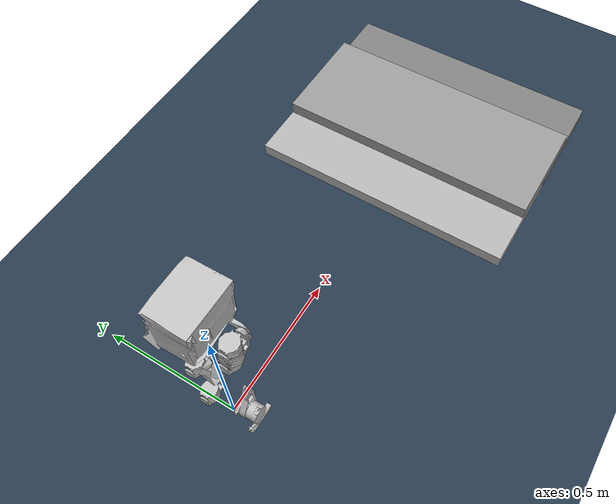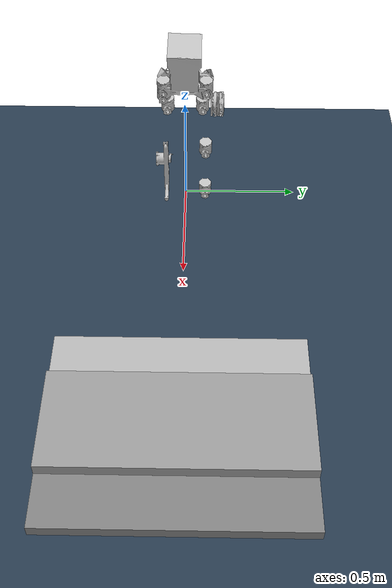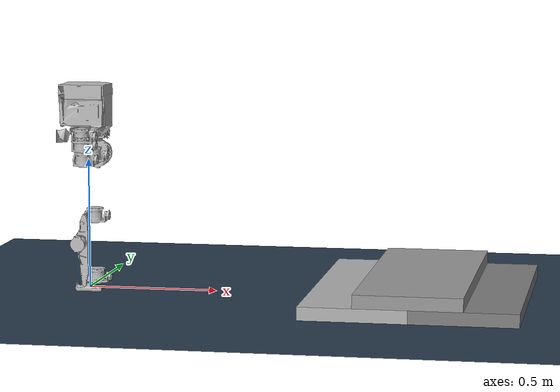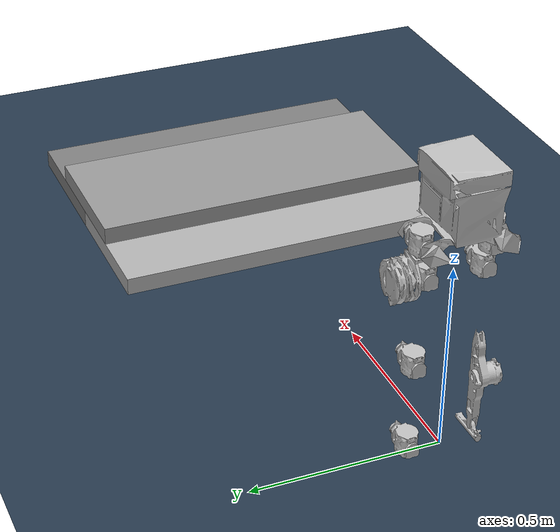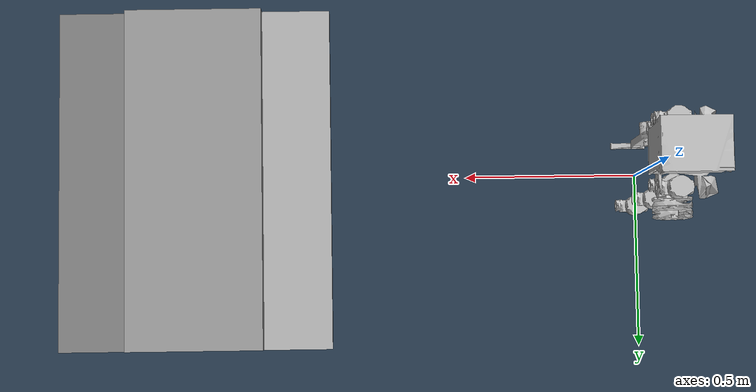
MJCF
<mujoco model="hunter rough scene">
  <include file="maker_pdd_mjx.xml"/>

  <statistic center="0 0 0.1" extent="0.8" meansize="0.04"/>

  <visual>
    <headlight diffuse=".8 .8 .8" ambient=".2 .2 .2" specular="1 1 1"/>
    <rgba force="1 0 0 1"/>
    <global azimuth="120" elevation="-20"/>
    <map force="0.01"/>
    <scale forcewidth="0.3" contactwidth="0.5" contactheight="0.2"/>
    <quality shadowsize="8192"/>
  </visual>

  <asset>
    <!-- https://polyhaven.com/a/rock_face -->
    <texture type="2d" name="groundplane" file="./assets/rocky_texture.png"/>
    <material name="groundplane" texture="groundplane" texuniform="true" texrepeat="5 5" reflectance=".8"/>
    <hfield name="hfield" file="./assets/hfield.png" size="10 10 .05 0.1"/>
  </asset>

  <worldbody>
    <light pos="0 0 1"/>
    <camera name="front_view" pos="0 -5 1" xyaxes="1 0 0 0 0 1"/>

    <!-- Ground plane for context -->
    <body name="stairs" pos="1.0 0.0 0.0" quat="1 0 0 -1">
      <!-- Ground plane for context -->

      <!-- Step 1 -->
      <geom name= "stairs_1" type="box" size="0.5 0.2 0.025" pos="0 0.1 0.025" rgba="0.7 0.7 0.7 1"/>
      <!-- Step 2 -->
      <geom name= "stairs_2" type="box" size="0.5 0.2 0.025" pos="0 0.3 0.075" rgba="0.6 0.6 0.6 1"/>
      <!-- Step 3 -->
      <geom name= "stairs_3" type="box" size="0.5 0.2 0.025" pos="0 0.5 0.025" rgba="0.5 0.5 0.5 1"/>

      <!-- Step 1 -->
      <!-- Step 2 -->
      <!-- Step 3 -->
      <!-- Step 4 -->
      <!-- Step 5 -->
      <!-- Step 6 -->
      <!-- Step 7 -->
    </body>

  </worldbody>
</mujoco>

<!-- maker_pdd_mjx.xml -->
<mujoco model="pdd_mjx">
  <compiler angle="radian" meshdir="meshes/"/>
  <option iterations="2" ls_iterations="5" timestep="0.001">
    <flag eulerdamp="disable"/>
  </option>

  <size njmax="500" nconmax="100" />

  <visual>
    <quality shadowsize='4096' />
    <map znear='0.05' />
  </visual>

  <default>
    <default class="hunter">
      <position inheritrange="1" dampratio="0"/>
      <joint damping="0.00" frictionloss="0.2" armature="0.1"/>
      <default class="visual">
        <geom type="mesh" contype="0" conaffinity="0" group="1" density="0" rgba="0.75294 0.75294 0.75294 1"/>
      </default>
      <default class='visualgeom'>
        <geom material='visualgeom' condim='1' contype='0' conaffinity='0' />
      </default>
      <default class="collision">
        <geom group="3" mass="0" density="0"/>
        <default class="foot">
          <geom size="0.05005 0.01725 0.001" type="box"/>
          <default class="foot1">
            <geom size="0.001" contype="0" conaffinity="0" density="0"/>
          </default>
          <default class="foot2">
            <geom size="0.001"/>
          </default>
        </default>
      </default>
      <site size="0.001" rgba="0.5 0.5 0.5 0.3" group="4"/>
    </default>
    <default class="hunter_motor_1">
      <joint damping="1.0" armature="0.1" actuatorfrcrange="-36 36"/>
    </default>
    <default class="hunter_motor_2">
      <joint damping="0.5" armature="0.1" actuatorfrcrange="-36 36"/>
    </default>
    <default class="hunter_motor_3">
      <joint damping="1.0" armature="0.1" actuatorfrcrange="-94 94"/>
    </default>
    <default class="hunter_motor_4">
      <joint damping="2.5" armature="0.1" actuatorfrcrange="-94 94"/>
    </default>
     <default class="hunter_motor_5">
      <joint damping="1.0" armature="0.1" actuatorfrcrange="-36 36"/>
    </default>

  </default>

  <asset>
    <texture type="skybox" builtin="gradient" rgb1="0.3 0.5 0.7" rgb2="0 0 0" width="512"
      height="512" />
    <texture name="texplane" type="2d" builtin="checker" rgb1=".2 .3 .4" rgb2=".1 0.15 0.2"
      width="512" height="512" mark="cross" markrgb=".8 .8 .8" />
    <texture name="texplane2" type="2d" builtin="checker" rgb1="1 0.3137 0.1843"
      rgb2="0.0 0.30196 0.38039"
      width="512" height="512" mark="cross" markrgb=".8 .8 .8" />

    <material name="matplane" reflectance="0." texture="texplane" texrepeat="1 1" texuniform="true" />
    <material name="matplane2" reflectance="0.1" texture="texplane2" texrepeat="1 1"
      texuniform="true" />

    <material name='obstacle' rgba='0.9 0.6 0.2 1' />
    <material name='visualgeom' rgba='0.5 0.9 0.2 1' />
    <material name='visualgeom2' rgba='0.5 0.9 0.2 1' />

    <mesh name="base_link" file="base_link.STL" />
    <mesh name="leg_l1_link" file="leg_l1_link.STL" />
    <mesh name="leg_l2_link" file="leg_l2_link.STL" />
    <mesh name="leg_l3_link" file="leg_l3_link.STL" />
    <mesh name="leg_l4_link" file="leg_l4_link.STL" />
    <mesh name="leg_l5_link" file="leg_l5_link.STL" />
    <mesh name="leg_r1_link" file="leg_r1_link.STL" />
    <mesh name="leg_r2_link" file="leg_r2_link.STL" />
    <mesh name="leg_r3_link" file="leg_r3_link.STL" />
    <mesh name="leg_r4_link" file="leg_r4_link.STL" />
    <mesh name="leg_r5_link" file="leg_r5_link.STL" />

    <hfield name='hf0' nrow='200' ncol='200' size="10 5 0.2 .1" />
  </asset>
  <worldbody>
    <light directional="true" diffuse=".4 .4 .4" specular="0.1 0.1 0.1" pos="0 0 5.0" dir="0 0 -1"
      castshadow="false" />
    <light directional="true" diffuse=".6 .6 .6" specular="0.2 0.2 0.2" pos="0 0 4" dir="0 0 -1" />
    <geom name="ground" type="plane" size="0 0 1" pos="0.001 0 0" quat="1 0 0 0" material="matplane"
      condim="1" conaffinity='15' />

    <body name="base_link" pos="0 0 0.7" childclass="hunter">
      <inertial pos="-0.010856 -6.8e-05 -0.007128" quat="0.979606 0.00882716 0.200723 -0.00231074" mass="5.67363"
      	diaginertia="0.0355096 0.0296524 0.0283549"/>
      <joint type='slide' axis='1 0 0' limited='false' />
      <joint type='slide' axis='0 1 0' limited='false' />
      <joint type='slide' axis='0 0 1' limited='false' />
      <joint type='ball' limited='false' />
      <camera name="track" pos="1.248 -0.947 0.3" xyaxes="0.628 0.779 -0.000 -0.274 0.221 0.936" mode="trackcom"/>

      <geom class="visual" mesh="base_link"/>
      <geom class="collision" size="0.092 0.075 0.1" pos="-0.01 0 -0.006" type="box"/>
      <site name="imu" size='0.01' pos="0 0 0"/>

      <body name="leg_l1_link" pos="-0.002 0.09 -0.1035">
        <inertial pos="0.002501 5.3e-05 -0.002722" quat="0.472677 0.527005 0.495251 0.503556" mass="0.453728"
          diaginertia="0.000163063 0.000147076 8.18618e-05"/>
        <joint name="leg_l1_joint" pos="0 0 0" axis="1 0 0" limited="true" range="-0.2 0.5" frictionloss="0.2"/>
        <geom class="visual" mesh="leg_l1_link"/>
        <body name="leg_l2_link" pos="0 -0.00016972 -0.0325">
          <inertial pos="-0.000273 0.043826 -0.058639" quat="0.7074 0.0648812 -0.0612384 0.70116" mass="0.925998"
            diaginertia="0.00166463 0.00123897 0.0010754"/>
          <joint name="leg_l2_joint" pos="0 0 0" axis="0 0 1" limited="true" range="-0.5 1" frictionloss="0.2"/>
          <geom class="visual" mesh="leg_l2_link"/>
          <geom class="collision" size="0.065 0.073 0.073" pos="0 0.0046 -0.057" quat="0.707388 0.706825 0 0" type="box" />
          <body name="leg_l3_link" pos="0 -0.01433 -0.0575">
            <inertial pos="0.003163 -0.022552 -0.027258" quat="0.678041 0.0230005 -0.0875592 0.729428" mass="1.39047" diaginertia="0.00722081 0.00694653 0.00181065"/>
            <joint name="leg_l3_joint" pos="0 0 0" axis="0 1 0" limited="true" range="-1.5 0.2" frictionloss="0.2"/>
            <geom class="visual" mesh="leg_l3_link"/>
            <geom class="collision" size="0.03 0.125 0.025" pos="0.015 0.02 -0.1" quat="0.707388 0.706825 0 0" type="box"/>
            <body name="leg_l4_link" pos="0 0.0145 -0.24">
              <inertial pos="-0.012044 0.006361 -0.093905" quat="0.696191 0.0388817 0.0714045 0.713237" mass="0.649518" diaginertia="0.00246473 0.00221871 0.000430556"/>
              <joint name="leg_l4_joint" pos="0 0 0" axis="0 1 0" limited="true" range="0 1.0" frictionloss="0.2"/>
              <geom class="visual" mesh="leg_l4_link"/>
              <geom class="collision" size="0.0205 0.125 0.015" pos="0 0 -0.105" quat="0.707388 0.706825 0 0" type="box"/>
              <geom class="collision" size="0.034 0.035 0.035" pos="-0.011 0.012 -0.079" quat="0.707388 0.706825 0 0" type="box" />
              <body name="leg_l5_link" pos="0.005 0 -0.23995">
                <inertial pos="0.012435 0 -0.015511" quat="0.48854 0.511203 0.511203 0.48854" mass="0.030265" diaginertia="2.5e-05 2.40454e-05 1.95464e-06"/>
                <joint name="leg_l5_joint" pos="0 0 0" axis="0 1 0" limited="true" range="-0.52 0.52" frictionloss="0.2"/>
                <geom class="visual" mesh="leg_l5_link"/>
                <geom class="collision" size="0.05005 0.01725 0.00875" pos="0.01503 0 -0.0102" quat="0.707388 0.706825 0 0" type="box" />
                <body name="leg_l_f1_link" pos="0.06 0 -0.007">
                  <inertial pos="0 0 0" mass="0.01" diaginertia="1e-06 1e-06 1e-06"/>
                  <geom name="leg_l_f1_foot1" class="foot1"/>
                  <geom name="leg_l_f1_foot2" class="foot2"/>
                  <site name="leg_l_f1_site" pos="0 0 0"/>
                </body>
                <body name="leg_l_f2_link" pos="-0.03 0 -0.007">
                  <inertial pos="0 0 0" mass="0.01" diaginertia="1e-06 1e-06 1e-06"/>
                  <geom name="leg_l_f2_foot1" class="foot1"/>
                  <geom name="leg_l_f2_foot2" class="foot2"/>
                  <site name="leg_l_f2_site" pos="0 0 0"/>
                </body>
                <geom name="left_foot" class="foot"/>
                <site name="left_foot" pos="0 0 0" />
              </body>
            </body>
          </body>
        </body>
      </body>
      <body name="leg_r1_link" pos="-0.002 -0.09 -0.1035">
        <inertial pos="0.002501 -5.3e-05 -0.002722" quat="0.503556 0.495251 0.527005 0.472677" mass="0.453728" diaginertia="0.000163063 0.000147076 8.18618e-05"/>
        <joint name="leg_r1_joint" pos="0 0 0" axis="1 0 0" limited="true" range="-0.5 0.2" frictionloss="0.2"/>
        <geom class="visual" mesh="leg_r1_link"/>
        <body name="leg_r2_link" pos="0 0.00016972 -0.0325">
          <inertial pos="9e-05 -0.043826 -0.058639" quat="0.7074 0.0648812 -0.0612384 0.70116" mass="0.925998" diaginertia="0.00166463 0.00123897 0.0010754"/>
          <joint name="leg_r2_joint" pos="0 0 0" axis="0 0 1" limited="true" range="-1 0.5" frictionloss="0.2"/>
          <geom class="visual" mesh="leg_r2_link"/>
          <geom class="collision" size="0.065 0.073 0.073" pos="0 -0.0033 -0.057" quat="0.707388 0.706825 0 0" type="box"/>
          <body name="leg_r3_link" pos="0 0.01633 -0.0575">
            <inertial pos="0.003311 0.02265 -0.027271" quat="0.734236 -0.0877978 0.023126 0.672795" mass="1.38862" diaginertia="0.00722344 0.00694292 0.00180965"/>
            <joint name="leg_r3_joint" pos="0 0 0" axis="0 1 0" limited="true" range="-1.5 0.2" frictionloss="0.2"/>
            <geom class="visual" mesh="leg_r3_link"/>
            <geom class="collision" size="0.03 0.125 0.025" pos="0.015 -0.02 -0.1" quat="0.707388 0.706825 0 0" type="box"/>
            <body name="leg_r4_link" pos="0 -0.0145 -0.24">
              <inertial pos="-0.007886 -0.007123 -0.088091" quat="0.589012 0.00853647 -0.018288 0.807872" mass="0.61472" diaginertia="0.00177827 0.00175932 0.00018341"/>
              <joint name="leg_r4_joint" pos="0 0 0" axis="0 1 0" limited="true" range="0 1.0" frictionloss="0.2"/>
              <geom class="visual" mesh="leg_r4_link"/>
              <geom class="collision" size="0.0205 0.125 0.015" pos="0 0 -0.105" quat="0.707388 0.706825 0 0" type="box" />
              <geom class="collision" size="0.034 0.035 0.035" pos="-0.011 -0.012 -0.079" quat="0.707388 0.706825 0 0" type="box" />
              <body name="leg_r5_link" pos="0.005 0 -0.23995">
                <inertial pos="0.012435 -0.0005 -0.015511" quat="0.48854 0.511203 0.511203 0.48854" mass="0.030265" diaginertia="2.5e-05 2.40454e-05 1.95464e-06"/>
                <joint name="leg_r5_joint" pos="0 0 0" axis="0 1 0" limited="true" range="-0.52 0.52" frictionloss="0.2"/>
                <geom class="visual" mesh="leg_r5_link"/>
                <geom class="collision" size="0.05005 0.01725 0.00875" pos="0.01503 0 -0.0102" quat="0.707388 0.706825 0 0" type="box" />
                <body name="leg_r_f1_link" pos="0.06 0 -0.007">
                  <inertial pos="0 0 0" mass="0.01" diaginertia="1e-06 1e-06 1e-06"/>
                  <geom name="leg_r_f1_foot1" class="foot1"/>
                  <geom name="leg_r_f1_foot2" class="foot2"/>
                  <site name="leg_r_f1_site" pos="0 0 0"/>
                </body>
                <body name="leg_r_f2_link" pos="-0.03 0 -0.007">
                  <inertial pos="0 0 0" mass="0.01" diaginertia="1e-06 1e-06 1e-06"/>
                  <geom name="leg_r_f2_foot1" class="foot1"/>
                  <geom name="leg_r_f2_foot2" class="foot2"/>
                  <site name="leg_r_f2_site" pos="0 0 0"/>
                </body>
                <geom name="right_foot" class="foot"/>
                <site name="right_foot" pos="0 0 0" />
              </body>
            </body>
          </body>
        </body>
      </body>
    </body>
  </worldbody>

  <actuator>
    <position class="hunter" name="leg_l1_joint" joint="leg_l1_joint" kp="15" />
    <position class="hunter" name="leg_l2_joint" joint="leg_l2_joint" kp="5" />
    <position class="hunter" name="leg_l3_joint" joint="leg_l3_joint" kp="15" />
    <position class="hunter" name="leg_l4_joint" joint="leg_l4_joint" kp="25" />
    <position class="hunter" name="leg_l5_joint" joint="leg_l5_joint" kp="5" />

    <position class="hunter" name="leg_r1_joint" joint="leg_r1_joint" kp="15" />
    <position class="hunter" name="leg_r2_joint" joint="leg_r2_joint" kp="5" />
    <position class="hunter" name="leg_r3_joint" joint="leg_r3_joint" kp="15" />
    <position class="hunter" name="leg_r4_joint" joint="leg_r4_joint" kp="25" />
    <position class="hunter" name="leg_r5_joint" joint="leg_r5_joint" kp="5" />
  </actuator>

  <sensor>
    <actuatorpos name='leg_l1_joint_p' actuator='leg_l1_joint' user='13' />
    <actuatorpos name='leg_l2_joint_p' actuator='leg_l2_joint' user='13' />
    <actuatorpos name='leg_l3_joint_p' actuator='leg_l3_joint' user='13' />
    <actuatorpos name='leg_l4_joint_p' actuator='leg_l4_joint' user='13' />
    <actuatorpos name='leg_l5_joint_p' actuator='leg_l5_joint' user='13' />
    <actuatorpos name='leg_r1_joint_p' actuator='leg_r1_joint' user='13' />
    <actuatorpos name='leg_r2_joint_p' actuator='leg_r2_joint' user='13' />
    <actuatorpos name='leg_r3_joint_p' actuator='leg_r3_joint' user='13' />
    <actuatorpos name='leg_r4_joint_p' actuator='leg_r4_joint' user='13' />
    <actuatorpos name='leg_r5_joint_p' actuator='leg_r5_joint' user='13' />

    <actuatorvel name='leg_l1_joint_v' actuator='leg_l1_joint' user='13' />
    <actuatorvel name='leg_l2_joint_v' actuator='leg_l2_joint' user='13' />
    <actuatorvel name='leg_l3_joint_v' actuator='leg_l3_joint' user='13' />
    <actuatorvel name='leg_l4_joint_v' actuator='leg_l4_joint' user='13' />
    <actuatorvel name='leg_l5_joint_v' actuator='leg_l5_joint' user='13' />
    <actuatorvel name='leg_r1_joint_v' actuator='leg_r1_joint' user='13' />
    <actuatorvel name='leg_r2_joint_v' actuator='leg_r2_joint' user='13' />
    <actuatorvel name='leg_r3_joint_v' actuator='leg_r3_joint' user='13' />
    <actuatorvel name='leg_r4_joint_v' actuator='leg_r4_joint' user='13' />
    <actuatorvel name='leg_r5_joint_v' actuator='leg_r5_joint' user='13' />

    <actuatorfrc name='leg_l1_joint_f' actuator='leg_l1_joint' user='13' />
    <actuatorfrc name='leg_l2_joint_f' actuator='leg_l2_joint' user='13' />
    <actuatorfrc name='leg_l3_joint_f' actuator='leg_l3_joint' user='13' />
    <actuatorfrc name='leg_l4_joint_f' actuator='leg_l4_joint' user='13' />
    <actuatorfrc name='leg_l5_joint_f' actuator='leg_l5_joint' user='13' />
    <actuatorfrc name='leg_r1_joint_f' actuator='leg_r1_joint' user='13' />
    <actuatorfrc name='leg_r2_joint_f' actuator='leg_r2_joint' user='13' />
    <actuatorfrc name='leg_r3_joint_f' actuator='leg_r3_joint' user='13' />
    <actuatorfrc name='leg_r4_joint_f' actuator='leg_r4_joint' user='13' />
    <actuatorfrc name='leg_r5_joint_f' actuator='leg_r5_joint' user='13' />

    <gyro site="imu" name="gyro"/>
    <velocimeter site="imu" name="local_linvel"/>
    <accelerometer site="imu" name="accelerometer"/>
    <framepos objtype="site" objname="imu" name="position"/>
    <framezaxis objtype="site" objname="imu" name="upvector"/>
    <framexaxis objtype="site" objname="imu" name="forwardvector"/>
    <framelinvel objtype="site" objname="imu" name="global_linvel"/>
    <frameangvel objtype="site" objname="imu" name="global_angvel"/>
    <framequat objtype="site" objname="imu" name="orientation"/>

    <framelinvel objtype="site" objname="left_foot" name="left_foot_global_linvel"/>
    <framelinvel objtype="site" objname="right_foot" name="right_foot_global_linvel"/>

  </sensor>
</mujoco>
